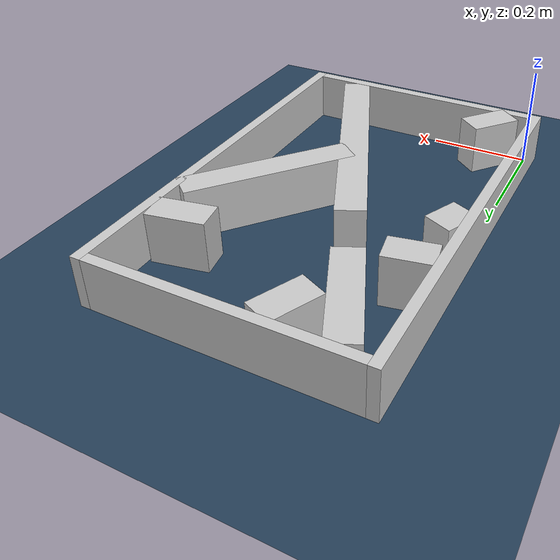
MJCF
<?xml version="1.0" ?>
<mujoco model="generated_real_template">
  <compiler angle="degree"/>
  <option timestep="0.002" integrator="implicitfast" iterations="100" cone="elliptic"/>
  <default>
    <geom density="1"/>
  </default>
  <asset>
    <texture builtin="gradient" height="3072" rgb1="0.3 0.5 0.7" rgb2="0 0 0" type="skybox" width="512"/>
    <texture builtin="checker" height="300" mark="edge" markrgb="0.8 0.8 0.8" name="groundplane" rgb1="0.2 0.3 0.4" rgb2="0.1 0.2 0.3" type="2d" width="300"/>
    <material name="groundplane" reflectance="0.2" texrepeat="5 5" texture="groundplane" texuniform="true"/>
  </asset>
  <worldbody>
    <light dir="0 0 -1" directional="true" pos="0 0 1.5"/>
    <geom name="floor" type="plane" condim="4" friction="0.5 0.005 0.001" material="groundplane" size="0 0 0.05"/>
    <body name="walls">
      <geom name="wall_boundary_left" type="box" condim="4" friction="1.0 0.005 0.0001" rgba="0.8 0.8 0.8 1" pos="-0.010000 0.387500 0.050000" euler="0 0 0.000000" size="0.010000 0.407500 0.050000"/>
      <geom name="wall_boundary_right" type="box" condim="4" friction="1.0 0.005 0.0001" rgba="0.8 0.8 0.8 1" pos="0.500000 0.387500 0.050000" euler="0 0 0.000000" size="0.010000 0.407500 0.050000"/>
      <geom name="wall_boundary_bottom" type="box" condim="4" friction="1.0 0.005 0.0001" rgba="0.8 0.8 0.8 1" pos="0.245000 -0.010000 0.050000" euler="0 0 0.000000" size="0.245000 0.010000 0.050000"/>
      <geom name="wall_boundary_top" type="box" condim="4" friction="1.0 0.005 0.0001" rgba="0.8 0.8 0.8 1" pos="0.245000 0.785000 0.050000" euler="0 0 0.000000" size="0.245000 0.010000 0.050000"/>
      <geom name="wall_inner_1_1" type="box" condim="4" friction="1.0 0.005 0.0001" rgba="0.8 0.8 0.8 1" pos="0.073597 0.039682 0.050000" euler="0 0 50.798612" size="0.051207 0.028500 0.050000"/>
      <geom name="wall_inner_1_2" type="box" condim="4" friction="1.0 0.005 0.0001" rgba="0.8 0.8 0.8 1" pos="0.382588 0.418523 0.050000" euler="0 0 50.798612" size="0.166641 0.028500 0.050000"/>
      <geom name="wall_inner_2_1" type="box" condim="4" friction="1.0 0.005 0.0001" rgba="0.8 0.8 0.8 1" pos="0.289499 0.240960 0.050000" euler="0 0 114.579968" size="0.264971 0.028500 0.050000"/>
      <geom name="wall_inner_2_2" type="box" condim="4" friction="1.0 0.005 0.0001" rgba="0.8 0.8 0.8 1" pos="0.090622 0.675746 0.050000" euler="0 0 114.579968" size="0.109145 0.028500 0.050000"/>
      <geom name="wall_inner_3_1" type="box" condim="4" friction="1.0 0.005 0.0001" rgba="0.8 0.8 0.8 1" pos="0.161281 0.728004 0.050000" euler="0 0 -114.551761" size="0.051668 0.028500 0.050000"/>
      <geom name="wall_inner_3_2" type="box" condim="4" friction="1.0 0.005 0.0001" rgba="0.8 0.8 0.8 1" pos="0.020510 0.419849 0.050000" euler="0 0 -114.551761" size="0.035104 0.028500 0.050000"/>
      <geom name="wall_inner_4_1" type="box" condim="4" friction="1.0 0.005 0.0001" rgba="0.8 0.8 0.8 1" pos="0.435232 0.611730 0.050000" euler="0 0 -169.597634" size="0.055684 0.028500 0.050000"/>
      <geom name="wall_inner_4_2" type="box" condim="4" friction="1.0 0.005 0.0001" rgba="0.8 0.8 0.8 1" pos="0.044201 0.539945 0.050000" euler="0 0 -169.597634" size="0.044940 0.028500 0.050000"/>
    </body>
  </worldbody>
</mujoco>
